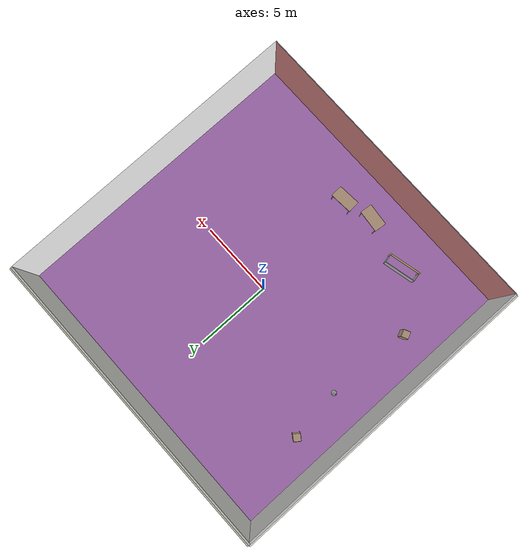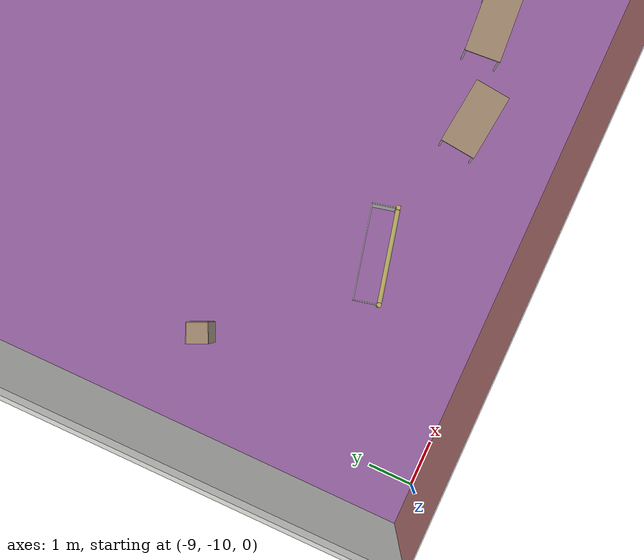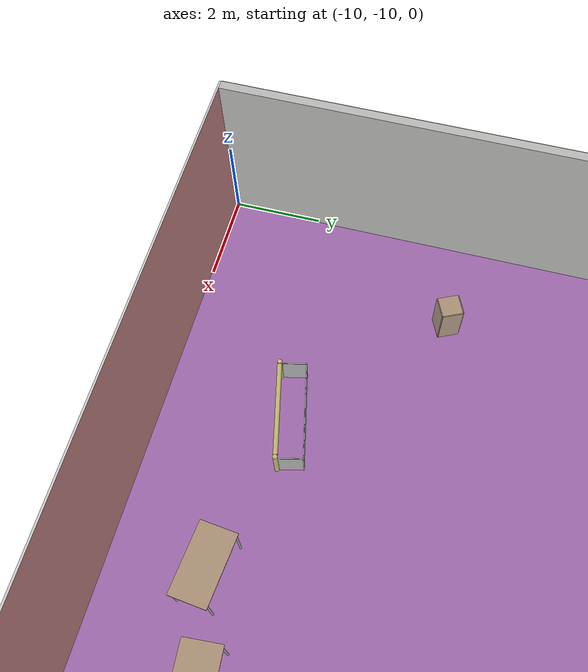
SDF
<sdf version="1.4">
 <world name="default">
  <physics type="ode">
   <max_step_size>0.001</max_step_size>
   <real_time_factor>1</real_time_factor>
   <real_time_update_rate>1000</real_time_update_rate>
   <gravity>0 0 -9.8</gravity>
  </physics>
  <scene><ambient>0.4 0.4 0.4 1</ambient><background>0.7 0.7 0.7 1</background><shadows>1</shadows></scene>
  <model name="Surrounding">
   <static>1</static>
   <link name="Ceiling">
    <collision name="Ceiling_Collision"><geometry><box><size>20 20 0.1</size></box></geometry></collision>
    <visual name="Ceiling_Visual">
     <geometry><box><size>20 20 0.1</size></box></geometry>
     <material>
      <script><uri>file://media/materials/scripts/gazebo.material</uri><name>Gazebo/GreyTransparent</name></script>
     </material>
    </visual>
    <pose>0 0 4.05 0 0 0</pose>
   </link>
   <link name="Wall_South">
    <collision name="Wall_South_Collision">
     <geometry><box><size>20 0 4</size></box></geometry>
     <pose>0 0 2 0 -0 0</pose>
    </collision>
    <visual name="Wall_South_Visual">
     <pose>0 0 2 0 -0 0</pose>
     <geometry><box><size>20 0 4</size></box></geometry>
     <material>
      <script><uri>file://media/materials/scripts/gazebo.material</uri><name>Gazebo/Red</name></script>
     </material>
    </visual>
    <velocity_decay><linear>0</linear><angular>0</angular></velocity_decay>
    <pose>0 -10 0 0 -0 0</pose>
   </link>
   <link name="Wall_East">
    <collision name="Wall_21_Collision">
     <geometry><box><size>20 0 4</size></box></geometry>
     <pose>0 0 2 0 -0 0</pose>
    </collision>
    <visual name="Wall_21_Visual">
     <pose>0 0 2 0 -0 0</pose>
     <geometry><box><size>20 0 4</size></box></geometry>
     <material>
      <script><uri>file://media/materials/scripts/gazebo.material</uri><name>Gazebo/BlueTransparent</name></script>
     </material>
    </visual>
    <velocity_decay><linear>0</linear><angular>0</angular></velocity_decay>
    <pose>10 0 0 0 -0 1.5708</pose>
   </link>
   <link name="Wall_North">
    <collision name="Wall_22_Collision">
     <geometry><box><size>20 0.2 4</size></box></geometry>
     <pose>0 0 2 0 -0 0</pose>
    </collision>
    <visual name="Wall_22_Visual">
     <pose>0 0 2 0 -0 0</pose>
     <geometry><box><size>20 0.2 4</size></box></geometry>
     <material>
      <script><uri>file://media/materials/scripts/gazebo.material</uri><name>Gazebo/PaintedWall</name></script>
     </material>
    </visual>
    <velocity_decay><linear>0</linear><angular>0</angular></velocity_decay>
    <pose>0 10 0 0 -0 0</pose>
   </link>
   <link name="Wall_West">
    <collision name="Wall_23_Collision">
     <geometry><box><size>20 0.2 4</size></box></geometry>
     <pose>0 0 2 0 -0 0</pose>
    </collision>
    <visual name="Wall_23_Visual">
     <pose>0 0 2 0 -0 0</pose>
     <geometry><box><size>20 0.2 4</size></box></geometry>
     <material>
      <script><uri>file://media/materials/scripts/gazebo.material</uri><name>Gazebo/CeilingTiled</name></script>
     </material>
    </visual>
    <velocity_decay><linear>0</linear><angular>0</angular></velocity_decay>
    <pose>-10 0 0 0 0 -1.5708</pose>
   </link>
   <link name="Ground_link">
    <collision name="collision">
     <pose>0 0 .05 0 -0 0</pose>
     <geometry><box><size>20 20 0.1</size></box></geometry>
    </collision>
    <visual name="visual">
     <pose>0 0 .05 0 -0 0</pose>
     <geometry><box><size>20 20 0.1</size></box></geometry>
     <material>
      <script><uri>file://media/materials/scripts/gazebo.material</uri><name>Gazebo/PurpleGlow</name></script>
     </material>
    </visual>
   </link>
   <static>1</static>
  </model>
  <spherical_coordinates>
   <surface_model>EARTH_WGS84</surface_model>
   <latitude_deg>0</latitude_deg>
   <longitude_deg>0</longitude_deg>
   <elevation>0</elevation>
   <heading_deg>0</heading_deg>
  </spherical_coordinates>
  <light name="lightball_0" type="diffuse">
   <diffuse>0.8 0.8 0.8 1</diffuse>
   <specular>0.2 0.2 0.2 1</specular>
   <attenuation>
    <range>100</range>
    <constant>0.7</constant>
    <linear>0.01</linear>
    <quadratic>0.001</quadratic>
   </attenuation>
   <direction>-0.5 0.1 -0.9</direction>
   <pose>-0.993675945187 1.79364841706 2.94333793877 0 0 0</pose>
  </light>
  <light name="lightball_1" type="diffuse">
   <diffuse>0.8 0.8 0.8 1</diffuse>
   <specular>0.2 0.2 0.2 1</specular>
   <attenuation>
    <range>100</range>
    <constant>0.7</constant>
    <linear>0.01</linear>
    <quadratic>0.001</quadratic>
   </attenuation>
   <direction>-0.5 0.1 -0.9</direction>
   <pose>5.08508856365 5.71455953492 3.29536715746 0 0 0</pose>
  </light>
  <include><uri>model://cabinet</uri><pose>-7.8881351898 -4.50568180807 0 0 0 0.441281349579</pose></include>
  <include>
   <uri>model://construction_cone</uri>
   <pose>-7.67313542042 1.06582054506 0 0 0 2.9330880592</pose>
  </include>
  <include><uri>model://cabinet</uri><pose>-8.0004210623 4.50374320728 0 0 0 2.53179520377</pose></include>
  <include>
   <uri>model://robocup_3Dsim_goal</uri>
   <pose>-4.74153747901 -7.47392198348 0 0 0 1.80381197591</pose>
  </include>
  <include><uri>model://table</uri><pose>-1.33648252718 -7.92629617763 0 0 0 3.03682130675</pose></include>
  <include><uri>model://table</uri><pose>0.707368038713 -7.44917870746 0 0 0 0.0761298712428</pose></include>
 </world>
</sdf>

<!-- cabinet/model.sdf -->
<sdf version="1.5">
  <model name="cabinet">
    <static>true</static>
    <link name="cabinet_bottom_plate">
      <inertial>
        <pose>0 0 -1 0 0 0</pose>
        <inertia>
          <ixx>2.050000</ixx>
          <ixy>0</ixy>
          <ixz>0</ixz>
          <iyy>2.050000</iyy>
          <iyz>0</iyz>
          <izz>2.050000</izz>
        </inertia>
        <mass>25.000000</mass>
      </inertial>
      <collision name="cabinet_bottom_plate_geom">
        <pose>0 0 0.010000 0 0 0</pose>
        <geometry>
          <box>
            <size>0.450000 0.450000 0.020000</size>
          </box>
        </geometry>
      </collision>
      <visual name="cabinet_bottom_plate_geom_visual">
        <pose>0 0 0.010000 0 0 0</pose>
        <geometry>
          <box>
            <size>0.450000 0.450000 0.020000</size>
          </box>
        </geometry>
        <material>
          <script>
            <uri>model://media/materials/scripts/gazebo.material</uri>
            <name>Gazebo/Wood</name>
          </script>
        </material>
      </visual>
      <collision name="cabinet_bottom_plate_geom_cabinet_back_plate">
        <pose>0.235000 0 0.510000 0 0 0</pose>
        <geometry>
          <box>
            <size>0.020000 0.450000 1.020000</size>
          </box>
        </geometry>
      </collision>
      <visual name="cabinet_bottom_plate_geom_cabinet_back_plate_visual">
        <pose>0.235000 0 0.510000 0 0 0</pose>
        <geometry>
          <box>
            <size>0.020000 0.450000 1.020000</size>
          </box>
        </geometry>
        <material>
          <script>
            <uri>model://media/materials/scripts/gazebo.material</uri>
            <name>Gazebo/Wood</name>
          </script>
        </material>
      </visual>
      <collision name="cabinet_bottom_plate_geom_cabinet_left_plate">
        <pose>0 0.235000 0.510000 0 0 0</pose>
        <geometry>
          <box>
            <size>0.450000 0.020000 1.020000</size>
          </box>
        </geometry>
      </collision>
      <visual name="cabinet_bottom_plate_geom_cabinet_left_plate_visual">
        <pose>0 0.235000 0.510000 0 0 0</pose>
        <geometry>
          <box>
            <size>0.450000 0.020000 1.020000</size>
          </box>
        </geometry>
        <material>
          <script>
            <uri>model://media/materials/scripts/gazebo.material</uri>
            <name>Gazebo/Wood</name>
          </script>
        </material>
      </visual>
      <collision name="cabinet_bottom_plate_geom_cabinet_middle_plate">
        <pose>0 0 0.510000 0 0 0</pose>
        <geometry>
          <box>
            <size>0.450000 0.450000 0.020000</size>
          </box>
        </geometry>
      </collision>
      <visual name="cabinet_bottom_plate_geom_cabinet_middle_plate_visual">
        <pose>0 0 0.510000 0 0 0</pose>
        <geometry>
          <box>
            <size>0.450000 0.450000 0.020000</size>
          </box>
        </geometry>
        <material>
          <script>
            <uri>model://media/materials/scripts/gazebo.material</uri>
            <name>Gazebo/Wood</name>
          </script>
        </material>
      </visual>
      <collision name="cabinet_bottom_plate_geom_cabinet_right_plate">
        <pose>0 -0.235000 0.510000 0 0 0</pose>
        <geometry>
          <box>
            <size>0.450000 0.020000 1.020000</size>
          </box>
        </geometry>
      </collision>
      <visual name="cabinet_bottom_plate_geom_cabinet_right_plate_visual">
        <pose>0 -0.235000 0.510000 0 0 0</pose>
        <geometry>
          <box>
            <size>0.450000 0.020000 1.020000</size>
          </box>
        </geometry>
        <material>
          <script>
            <uri>model://media/materials/scripts/gazebo.material</uri>
            <name>Gazebo/Wood</name>
          </script>
        </material>
      </visual>
      <collision name="cabinet_bottom_plate_geom_cabinet_top_plate">
        <pose>0 0 1.010000 0 0 0</pose>
        <geometry>
          <box>
            <size>0.450000 0.450000 0.020000</size>
          </box>
        </geometry>
      </collision>
      <visual name="cabinet_bottom_plate_geom_cabinet_top_plate_visual">
        <pose>0 0 1.010000 0 0 0</pose>
        <geometry>
          <box>
            <size>0.450000 0.450000 0.020000</size>
          </box>
        </geometry>
        <material>
          <script>
            <uri>model://media/materials/scripts/gazebo.material</uri>
            <name>Gazebo/Wood</name>
          </script>
        </material>
      </visual>
    </link>
  </model>
</sdf>

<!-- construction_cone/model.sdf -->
<sdf version="1.5">
  <model name="Construction Cone">
    <link name="link">
      <collision name="collision">
        <geometry>
          <mesh>
            <scale>10 10 10</scale>
            <uri>file://isr-testbed/construction_cone/meshes/construction_cone.dae</uri>
          </mesh>
        </geometry>
      </collision>
      <visual name="visual">
        <geometry>
          <mesh>
            <scale>10 10 10</scale>
            <uri>file://isr-testbed/construction_cone/meshes/construction_cone.dae</uri>
          </mesh>
        </geometry>
      </visual>
    </link>
  </model>
</sdf>

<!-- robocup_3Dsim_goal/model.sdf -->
<sdf version="1.5">
  <model name="robocup_3d_goal">
    <static>true</static>
    <link name="left_post">
      <pose>0 1.05 0.45 0 0 0</pose>
      <collision name="collision">
        <geometry>
          <cylinder>
            <radius>0.05</radius>
            <length>0.9</length>
          </cylinder>
        </geometry>
      </collision>
      <visual name="visual">
        <geometry>
          <cylinder>
            <radius>0.05</radius>
            <length>0.9</length>
          </cylinder>
        </geometry>
        <material>
          <script>
            <uri>file://media/materials/scripts/gazebo.material</uri>
            <name>Gazebo/ZincYellow</name>
          </script>
        </material>
      </visual>
    </link>
    <link name="left_support_horiz_lower">
      <pose>0.30 1.05 0.01 0 0 0</pose>
      <collision name="collision">
        <geometry>
          <box>
            <size>0.50 0.02 0.02</size>
          </box>
        </geometry>
      </collision>
      <visual name="visual">
        <geometry>
          <box>
            <size>0.50 0.02 0.02</size>
          </box>
        </geometry>
        <material>
          <script>
            <uri>file://media/materials/scripts/gazebo.material</uri>
            <name>Gazebo/White</name>
          </script>
        </material>
      </visual>
    </link>
    <link name="left_support_horiz_upper">
      <pose>0.30 1.05 0.79 0 0 0</pose>
      <collision name="collision">
        <geometry>
          <box>
            <size>0.50 0.02 0.02</size>
          </box>
        </geometry>
      </collision>
      <visual name="visual">
        <geometry>
          <box>
            <size>0.50 0.02 0.02</size>
          </box>
        </geometry>
        <material>
          <script>
            <uri>file://media/materials/scripts/gazebo.material</uri>
            <name>Gazebo/White</name>
          </script>
        </material>
      </visual>
    </link>
    <link name="left_support_vertical">
      <pose>0.56 1.05 0.4 0 1.5708 0</pose>
      <collision name="collision">
        <geometry>
          <box>
            <size>0.80 0.02 0.02</size>
          </box>
        </geometry>
      </collision>
      <visual name="visual">
        <geometry>
          <box>
            <size>0.80 0.02 0.02</size>
          </box>
        </geometry>
        <material>
          <script>
            <uri>file://media/materials/scripts/gazebo.material</uri>
            <name>Gazebo/White</name>
          </script>
        </material>
      </visual>
    </link>
    <link name="right_support_horiz_lower">
      <pose>0.30 -1.05 0.01 0 0 0</pose>
      <collision name="collision">
        <geometry>
          <box>
            <size>0.50 0.02 0.02</size>
          </box>
        </geometry>
      </collision>
      <visual name="visual">
        <geometry>
          <box>
            <size>0.50 0.02 0.02</size>
          </box>
        </geometry>
        <material>
          <script>
            <uri>file://media/materials/scripts/gazebo.material</uri>
            <name>Gazebo/White</name>
          </script>
        </material>
      </visual>
    </link>
    <link name="right_support_horiz_upper">
      <pose>0.30 -1.05 0.79 0 0 0</pose>
      <collision name="collision">
        <geometry>
          <box>
            <size>0.50 0.02 0.02</size>
          </box>
        </geometry>
      </collision>
      <visual name="visual">
        <geometry>
          <box>
            <size>0.50 0.02 0.02</size>
          </box>
        </geometry>
        <material>
          <script>
            <uri>file://media/materials/scripts/gazebo.material</uri>
            <name>Gazebo/White</name>
          </script>
        </material>
      </visual>
    </link>
    <link name="right_support_vertical">
      <pose>0.56 -1.05 0.4 0 1.5708 0</pose>
      <collision name="collision">
        <geometry>
          <box>
            <size>0.80 0.02 0.02</size>
          </box>
        </geometry>
      </collision>
      <visual name="visual">
        <geometry>
          <box>
            <size>0.80 0.02 0.02</size>
          </box>
        </geometry>
        <material>
          <script>
            <uri>file://media/materials/scripts/gazebo.material</uri>
            <name>Gazebo/White</name>
          </script>
        </material>
      </visual>
    </link>
    <link name="center_support_horiz_lower">
      <pose>0.56 0 0.01 0 1.5708 0</pose>
      <collision name="collision">
        <geometry>
          <box>
            <size>0.02 2.08 0.02</size>
          </box>
        </geometry>
      </collision>
      <visual name="visual">
        <geometry>
          <box>
            <size>0.02 2.08 0.02</size>
          </box>
        </geometry>
        <material>
          <script>
            <uri>file://media/materials/scripts/gazebo.material</uri>
            <name>Gazebo/White</name>
          </script>
        </material>
      </visual>
    </link>
    <link name="center_support_horiz_upper">
      <pose>0.56 0 0.79 0 1.5708 0</pose>
      <collision name="collision">
        <geometry>
          <box>
            <size>0.02 2.08 0.02</size>
          </box>
        </geometry>
      </collision>
      <visual name="visual">
        <geometry>
          <box>
            <size>0.02 2.08 0.02</size>
          </box>
        </geometry>
        <material>
          <script>
            <uri>file://media/materials/scripts/gazebo.material</uri>
            <name>Gazebo/White</name>
          </script>
        </material>
      </visual>
    </link>
    <link name="right_post">
      <pose>0 -1.05 0.45 0 0 0</pose>
      <collision name="collision">
        <geometry>
          <cylinder>
            <radius>0.05</radius>
            <length>0.9</length>
          </cylinder>
        </geometry>
      </collision>
      <visual name="visual">
        <geometry>
          <cylinder>
            <radius>0.05</radius>
            <length>0.9</length>
          </cylinder>
        </geometry>
        <material>
          <script>
            <uri>file://media/materials/scripts/gazebo.material</uri>
            <name>Gazebo/ZincYellow</name>
          </script>
        </material>
      </visual>
    </link>
    <link name="crossbar">
      <pose>0 0 0.85 1.57 1.57 0</pose>
      <collision name="collision">
        <geometry>
          <cylinder>
            <radius>0.05</radius>
            <length>2.0</length>
          </cylinder>
        </geometry>
      </collision>
      <visual name="visual">
        <geometry>
          <cylinder>
            <radius>0.05</radius>
            <length>2.0</length>
          </cylinder>
        </geometry>
        <material>
          <script>
            <uri>file://media/materials/scripts/gazebo.material</uri>
            <name>Gazebo/ZincYellow</name>
          </script>
        </material>
      </visual>
    </link>
    <link name="center_net">
      <pose>0.56 0 0.40 0 0 0</pose>
      <collision name="collision">
        <geometry>
          <box>
            <size>0.01 2.1 0.80</size>
          </box>
        </geometry>
      </collision>
      <visual name="visual">
        <geometry>
          <box>
            <size>0.01 2.1 0.80</size>
          </box>
        </geometry>
        <material>
          <script>
            <uri>model://../model_source/models/robocup09_spl_field/materials/scripts/</uri>
            <uri>model://../model_source/models/robocup09_spl_field/materials/textures/</uri>
            <name>RoboCup/Net</name>
          </script>
        </material>
      </visual>
    </link>
    <link name="left_net">
      <pose>0.30 1.05 0.40 0 0 0</pose>
      <collision name="collision">
        <geometry>
          <box>
            <size>0.50 0.01 0.76</size>
          </box>
        </geometry>
      </collision>
      <visual name="visual">
        <geometry>
          <box>
            <size>0.50 0.01 0.76</size>
          </box>
        </geometry>
        <material>
          <script>
            <uri>model://../model_source/models/robocup09_spl_field/materials/scripts/</uri>
            <uri>model://../model_source/models/robocup09_spl_field/materials/textures/</uri>
            <name>RoboCup/Net</name>
          </script>
        </material>
      </visual>
    </link>
    <link name="right_net">
      <pose>0.30 -1.05 0.40 0 0 0</pose>
      <collision name="collision">
        <geometry>
          <box>
            <size>0.50 0.01 0.76</size>
          </box>
        </geometry>
      </collision>
      <visual name="visual">
        <geometry>
          <box>
            <size>0.50 0.01 0.76</size>
          </box>
        </geometry>
        <material>
          <script>
            <uri>model://../model_source/models/robocup09_spl_field/materials/scripts/</uri>
            <uri>model://../model_source/models/robocup09_spl_field/materials/textures/</uri>
            <name>RoboCup/Net</name>
          </script>
        </material>
      </visual>
    </link>
  </model>
</sdf>

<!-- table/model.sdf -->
<sdf version="1.5">
  <model name="table">
    <static>true</static>
    <link name="link">
      <collision name="surface">
        <pose>0 0 1.0 0 0 0</pose>
        <geometry>
          <box>
            <size>1.5 0.8 0.03</size>
          </box>
        </geometry>
        <surface>
          <friction>
            <ode>
              <mu>0.6</mu>
              <mu2>0.6</mu2>
            </ode>
          </friction>
        </surface>
      </collision>
      <visual name="visual1">
        <pose>0 0 1.0 0 0 0</pose>
        <geometry>
          <box>
            <size>1.5 0.8 0.03</size>
          </box>
        </geometry>
        <material>
          <script>
            <uri>model://media/materials/scripts/gazebo.material</uri>
            <name>Gazebo/Wood</name>
          </script>
        </material>
      </visual>
      <collision name="front_left_leg">
        <pose>0.68 0.38 0.5 0 0 0</pose>
        <geometry>
          <cylinder>
            <radius>0.02</radius>
            <length>1.0</length>
          </cylinder>
        </geometry>
      </collision>
      <visual name="front_left_leg">
        <pose>0.68 0.38 0.5 0 0 0</pose>
        <geometry>
          <cylinder>
            <radius>0.02</radius>
            <length>1.0</length>
          </cylinder>
        </geometry>
        <material>
          <script>
            <uri>model://media/materials/scripts/gazebo.material</uri>
            <name>Gazebo/Grey</name>
          </script>
        </material>
      </visual>
      <collision name="front_right_leg">
        <pose>0.68 -0.38 0.5 0 0 0</pose>
        <geometry>
          <cylinder>
            <radius>0.02</radius>
            <length>1.0</length>
          </cylinder>
        </geometry>
      </collision>
      <visual name="front_right_leg">
        <pose>0.68 -0.38 0.5 0 0 0</pose>
        <geometry>
          <cylinder>
            <radius>0.02</radius>
            <length>1.0</length>
          </cylinder>
        </geometry>
        <material>
          <script>
            <uri>model://media/materials/scripts/gazebo.material</uri>
            <name>Gazebo/Grey</name>
          </script>
        </material>
      </visual>
      <collision name="back_right_leg">
        <pose>-0.68 -0.38 0.5 0 0 0</pose>
        <geometry>
          <cylinder>
            <radius>0.02</radius>
            <length>1.0</length>
          </cylinder>
        </geometry>
      </collision>
      <visual name="back_right_leg">
        <pose>-0.68 -0.38 0.5 0 0 0</pose>
        <geometry>
          <cylinder>
            <radius>0.02</radius>
            <length>1.0</length>
          </cylinder>
        </geometry>
        <material>
          <script>
            <uri>model://media/materials/scripts/gazebo.material</uri>
            <name>Gazebo/Grey</name>
          </script>
        </material>
      </visual>
      <collision name="back_left_leg">
        <pose>-0.68 0.38 0.5 0 0 0</pose>
        <geometry>
          <cylinder>
            <radius>0.02</radius>
            <length>1.0</length>
          </cylinder>
        </geometry>
      </collision>
      <visual name="back_left_leg">
        <pose>-0.68 0.38 0.5 0 0 0</pose>
        <geometry>
          <cylinder>
            <radius>0.02</radius>
            <length>1.0</length>
          </cylinder>
        </geometry>
        <material>
          <script>
            <uri>model://media/materials/scripts/gazebo.material</uri>
            <name>Gazebo/Grey</name>
          </script>
        </material>
      </visual>
    </link>
  </model>
</sdf>
